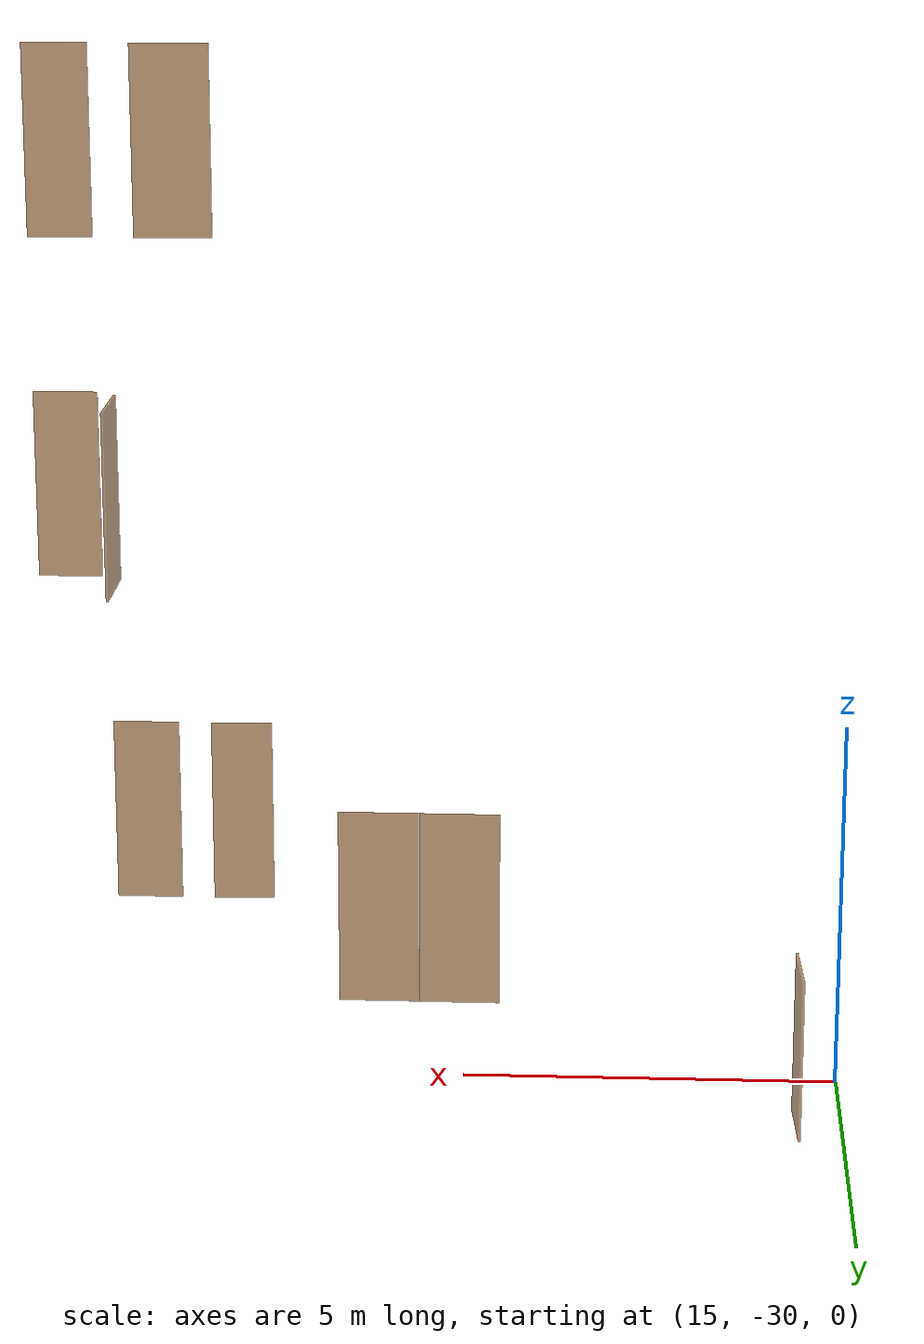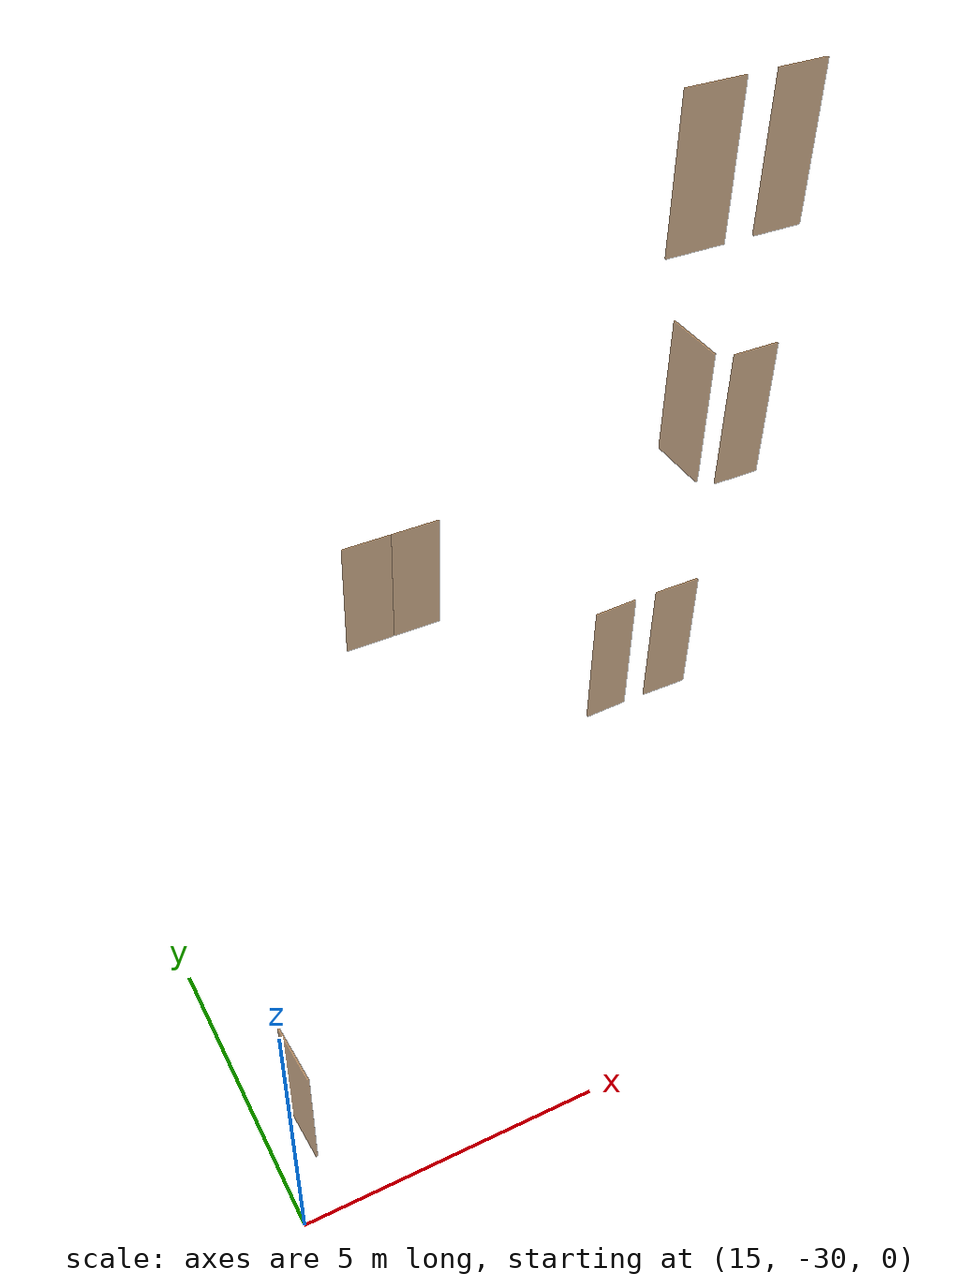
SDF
<sdf version="1.7">
 <world name="sim_world">
  <model name="Snull14">
   <pose>15.587816898779066 -28.54413247209049 0.0 0 0 1.6166443585963561</pose>
   <link name="right">
    <pose>0 0 1.11 0 0 0</pose>
    <visual name="right_visual">
     <geometry><box><size>1.023793662885057 0.03 2.2</size></box></geometry>
     <material>
      <ambient>0.5 0.25 0 0.6</ambient>
      <diffuse>0.5 0.25 0 0.6</diffuse>
      <pbr><metal><metalness>0.0</metalness></metal></pbr>
     </material>
    </visual>
    <collision name="right_collision">
     <geometry><box><size>1.023793662885057 0.03 2.2</size></box></geometry>
     <surface><contact><collide_bitmask>0x02</collide_bitmask></contact></surface>
    </collision>
    <inertial>
     <mass>50.0</mass>
     <inertia><ixx>20.17041666666667</ixx><iyy>24.533972767348345</iyy><izz>4.371056100681675</izz></inertia>
    </inertial>
   </link>
   <joint name="right_joint" type="revolute">
    <parent>world</parent>
    <child>right</child>
    <axis><xyz>0 0 1</xyz><limit><lower>0</lower><upper>1.57</upper></limit></axis>
    <pose>0.5168968314425285 0 0 0 0 0</pose>
   </joint>
   <plugin name="register_component" filename="libregister_component.so">
    <component name="Door">
     <v_max_door>0.5</v_max_door>
     <a_max_door>0.3</a_max_door>
     <a_nom_door>0.15</a_nom_door>
     <dx_min_door>0.01</dx_min_door>
     <f_max_door>500.0</f_max_door>
     <ros_interface>true</ros_interface>
     <door name="Snull14" type="SwingDoor" left_joint_name="empty_joint" right_joint_name="right_joint"/>
    </component>
   </plugin>
  </model>
  <model name="0null24">
   <pose>20.099279393645208 -22.700836351416932 4.0 0 0 -0.00411082363645534</pose>
   <link name="right">
    <pose>0.44732110776143874 0 1.11 0 0 0</pose>
    <visual name="right_visual">
     <geometry><box><size>0.8846422155228775 0.03 2.2</size></box></geometry>
     <material>
      <ambient>0.5 0.25 0 0.6</ambient>
      <diffuse>0.5 0.25 0 0.6</diffuse>
      <pbr><metal><metalness>0.0</metalness></metal></pbr>
     </material>
    </visual>
    <collision name="right_collision">
     <geometry><box><size>0.8846422155228775 0.03 2.2</size></box></geometry>
     <surface><contact><collide_bitmask>0x02</collide_bitmask></contact></surface>
    </collision>
    <inertial>
     <mass>50.0</mass>
     <inertia><ixx>20.17041666666667</ixx><iyy>23.42746603952178</iyy><izz>3.264549372855105</izz></inertia>
    </inertial>
   </link>
   <joint name="right_joint" type="revolute">
    <parent>world</parent>
    <child>right</child>
    <axis><xyz>0 0 -1</xyz><limit><lower>0</lower><upper>1.57</upper></limit></axis>
    <pose>0.44732110776143874 0 0 0 0 0</pose>
   </joint>
   <link name="left">
    <pose>-0.44732110776143874 0 1.11 0 0 0</pose>
    <visual name="left_visual">
     <geometry><box><size>0.8846422155228775 0.03 2.2</size></box></geometry>
     <material>
      <ambient>0.5 0.25 0 0.6</ambient>
      <diffuse>0.5 0.25 0 0.6</diffuse>
      <pbr><metal><metalness>0.0</metalness></metal></pbr>
     </material>
    </visual>
    <collision name="left_collision">
     <geometry><box><size>0.8846422155228775 0.03 2.2</size></box></geometry>
     <surface><contact><collide_bitmask>0x02</collide_bitmask></contact></surface>
    </collision>
    <inertial>
     <mass>50.0</mass>
     <inertia><ixx>20.17041666666667</ixx><iyy>23.42746603952178</iyy><izz>3.264549372855105</izz></inertia>
    </inertial>
   </link>
   <joint name="left_joint" type="revolute">
    <parent>world</parent>
    <child>left</child>
    <axis><xyz>0 0 -1</xyz><limit><lower>-1.57</lower><upper>0</upper></limit></axis>
    <pose>-0.44732110776143874 0 0 0 0 0</pose>
   </joint>
   <plugin name="register_component" filename="libregister_component.so">
    <component name="Door">
     <v_max_door>0.5</v_max_door>
     <a_max_door>0.3</a_max_door>
     <a_nom_door>0.15</a_nom_door>
     <dx_min_door>0.01</dx_min_door>
     <f_max_door>500.0</f_max_door>
     <ros_interface>true</ros_interface>
     <door name="0null24" type="DoubleSwingDoor" left_joint_name="left_joint" right_joint_name="right_joint"/>
    </component>
   </plugin>
  </model>
  <model name="nulln1">
   <pose>22.4242429899563 -25.92749131912032 4.0 0 0 0.040647577871593524</pose>
   <link name="right">
    <pose>0 0 1.11 0 0 0</pose>
    <visual name="right_visual">
     <geometry><box><size>0.7195351271562064 0.03 2.2</size></box></geometry>
     <material>
      <ambient>0.5 0.25 0 0.6</ambient>
      <diffuse>0.5 0.25 0 0.6</diffuse>
      <pbr><metal><metalness>0.0</metalness></metal></pbr>
     </material>
    </visual>
    <collision name="right_collision">
     <geometry><box><size>0.7195351271562064 0.03 2.2</size></box></geometry>
     <surface><contact><collide_bitmask>0x02</collide_bitmask></contact></surface>
    </collision>
    <inertial>
     <mass>50.0</mass>
     <inertia><ixx>20.17041666666667</ixx><iyy>22.323878330048746</iyy><izz>2.1609616633820754</izz></inertia>
    </inertial>
   </link>
   <joint name="right_joint" type="revolute">
    <parent>world</parent>
    <child>right</child>
    <axis><xyz>0 0 1</xyz><limit><lower>0</lower><upper>1.57</upper></limit></axis>
    <pose>0.3647675635781032 0 0 0 0 0</pose>
   </joint>
   <plugin name="register_component" filename="libregister_component.so">
    <component name="Door">
     <v_max_door>0.5</v_max_door>
     <a_max_door>0.3</a_max_door>
     <a_nom_door>0.15</a_nom_door>
     <dx_min_door>0.01</dx_min_door>
     <f_max_door>500.0</f_max_door>
     <ros_interface>true</ros_interface>
     <door name="nulln1" type="SwingDoor" left_joint_name="empty_joint" right_joint_name="right_joint"/>
    </component>
   </plugin>
  </model>
  <model name="nulln2">
   <pose>23.559907403950252 -25.91266848373967 4.0 0 0 0.0</pose>
   <link name="right">
    <pose>0 0 1.11 0 0 0</pose>
    <visual name="right_visual">
     <geometry><box><size>0.7772157711981487 0.03 2.2</size></box></geometry>
     <material>
      <ambient>0.5 0.25 0 0.6</ambient>
      <diffuse>0.5 0.25 0 0.6</diffuse>
      <pbr><metal><metalness>0.0</metalness></metal></pbr>
     </material>
    </visual>
    <collision name="right_collision">
     <geometry><box><size>0.7772157711981487 0.03 2.2</size></box></geometry>
     <surface><contact><collide_bitmask>0x02</collide_bitmask></contact></surface>
    </collision>
    <inertial>
     <mass>50.0</mass>
     <inertia><ixx>20.17041666666667</ixx><iyy>22.68360147916306</iyy><izz>2.5206848124963877</izz></inertia>
    </inertial>
   </link>
   <joint name="right_joint" type="revolute">
    <parent>world</parent>
    <child>right</child>
    <axis><xyz>0 0 1</xyz><limit><lower>0</lower><upper>1.57</upper></limit></axis>
    <pose>0.39360788559907434 0 0 0 0 0</pose>
   </joint>
   <plugin name="register_component" filename="libregister_component.so">
    <component name="Door">
     <v_max_door>0.5</v_max_door>
     <a_max_door>0.3</a_max_door>
     <a_nom_door>0.15</a_nom_door>
     <dx_min_door>0.01</dx_min_door>
     <f_max_door>500.0</f_max_door>
     <ros_interface>true</ros_interface>
     <door name="nulln2" type="SwingDoor" left_joint_name="empty_joint" right_joint_name="right_joint"/>
    </component>
   </plugin>
  </model>
  <model name="1null87">
   <pose>24.394130605234643 -25.87219504909829 8.0 0 0 0.0</pose>
   <link name="right">
    <pose>0 0 1.11 0 0 0</pose>
    <visual name="right_visual">
     <geometry><box><size>0.746449986932008 0.03 2.2</size></box></geometry>
     <material>
      <ambient>0.5 0.25 0 0.6</ambient>
      <diffuse>0.5 0.25 0 0.6</diffuse>
      <pbr><metal><metalness>0.0</metalness></metal></pbr>
     </material>
    </visual>
    <collision name="right_collision">
     <geometry><box><size>0.746449986932008 0.03 2.2</size></box></geometry>
     <surface><contact><collide_bitmask>0x02</collide_bitmask></contact></surface>
    </collision>
    <inertial>
     <mass>50.0</mass>
     <inertia><ixx>20.17041666666667</ixx><iyy>22.488281595794984</iyy><izz>2.3253649291283125</izz></inertia>
    </inertial>
   </link>
   <joint name="right_joint" type="revolute">
    <parent>world</parent>
    <child>right</child>
    <axis><xyz>0 0 1</xyz><limit><lower>0</lower><upper>1.57</upper></limit></axis>
    <pose>0.378224993466004 0 0 0 0 0</pose>
   </joint>
   <plugin name="register_component" filename="libregister_component.so">
    <component name="Door">
     <v_max_door>0.5</v_max_door>
     <a_max_door>0.3</a_max_door>
     <a_nom_door>0.15</a_nom_door>
     <dx_min_door>0.01</dx_min_door>
     <f_max_door>500.0</f_max_door>
     <ros_interface>true</ros_interface>
     <door name="1null87" type="SwingDoor" left_joint_name="empty_joint" right_joint_name="right_joint"/>
    </component>
   </plugin>
  </model>
  <model name="1null88">
   <pose>23.79315237277376 -25.21506179292833 8.0 0 0 1.5778899623800977</pose>
   <link name="right">
    <pose>0 0 1.11 0 0 0</pose>
    <visual name="right_visual">
     <geometry><box><size>1.0111211621378167 0.03 2.2</size></box></geometry>
     <material>
      <ambient>0.5 0.25 0 0.6</ambient>
      <diffuse>0.5 0.25 0 0.6</diffuse>
      <pbr><metal><metalness>0.0</metalness></metal></pbr>
     </material>
    </visual>
    <collision name="right_collision">
     <geometry><box><size>1.0111211621378167 0.03 2.2</size></box></geometry>
     <surface><contact><collide_bitmask>0x02</collide_bitmask></contact></surface>
    </collision>
    <inertial>
     <mass>50.0</mass>
     <inertia><ixx>20.17041666666667</ixx><iyy>24.426525018845542</iyy><izz>4.263608352178871</izz></inertia>
    </inertial>
   </link>
   <joint name="right_joint" type="revolute">
    <parent>world</parent>
    <child>right</child>
    <axis><xyz>0 0 -1</xyz><limit><lower>0</lower><upper>1.57</upper></limit></axis>
    <pose>0.5105605810689083 0 0 0 0 0</pose>
   </joint>
   <plugin name="register_component" filename="libregister_component.so">
    <component name="Door">
     <v_max_door>0.5</v_max_door>
     <a_max_door>0.3</a_max_door>
     <a_nom_door>0.15</a_nom_door>
     <dx_min_door>0.01</dx_min_door>
     <f_max_door>500.0</f_max_door>
     <ros_interface>true</ros_interface>
     <door name="1null88" type="SwingDoor" left_joint_name="empty_joint" right_joint_name="right_joint"/>
    </component>
   </plugin>
  </model>
  <model name="2null80">
   <pose>24.394130605234643 -25.87219504909829 12.0 0 0 0.0</pose>
   <link name="right">
    <pose>0 0 1.11 0 0 0</pose>
    <visual name="right_visual">
     <geometry><box><size>0.746449986932008 0.03 2.2</size></box></geometry>
     <material>
      <ambient>0.5 0.25 0 0.6</ambient>
      <diffuse>0.5 0.25 0 0.6</diffuse>
      <pbr><metal><metalness>0.0</metalness></metal></pbr>
     </material>
    </visual>
    <collision name="right_collision">
     <geometry><box><size>0.746449986932008 0.03 2.2</size></box></geometry>
     <surface><contact><collide_bitmask>0x02</collide_bitmask></contact></surface>
    </collision>
    <inertial>
     <mass>50.0</mass>
     <inertia><ixx>20.17041666666667</ixx><iyy>22.488281595794984</iyy><izz>2.3253649291283125</izz></inertia>
    </inertial>
   </link>
   <joint name="right_joint" type="revolute">
    <parent>world</parent>
    <child>right</child>
    <axis><xyz>0 0 1</xyz><limit><lower>0</lower><upper>1.57</upper></limit></axis>
    <pose>0.378224993466004 0 0 0 0 0</pose>
   </joint>
   <plugin name="register_component" filename="libregister_component.so">
    <component name="Door">
     <v_max_door>0.5</v_max_door>
     <a_max_door>0.3</a_max_door>
     <a_nom_door>0.15</a_nom_door>
     <dx_min_door>0.01</dx_min_door>
     <f_max_door>500.0</f_max_door>
     <ros_interface>true</ros_interface>
     <door name="2null80" type="SwingDoor" left_joint_name="empty_joint" right_joint_name="right_joint"/>
    </component>
   </plugin>
  </model>
  <model name="nullh2">
   <pose>23.09761789194637 -25.881267968487457 12.0 0 0 -0.0022126577289395</pose>
   <link name="right">
    <pose>0 0 1.11 0 0 0</pose>
    <visual name="right_visual">
     <geometry><box><size>0.90121456676933 0.03 2.2</size></box></geometry>
     <material>
      <ambient>0.5 0.25 0 0.6</ambient>
      <diffuse>0.5 0.25 0 0.6</diffuse>
      <pbr><metal><metalness>0.0</metalness></metal></pbr>
     </material>
    </visual>
    <collision name="right_collision">
     <geometry><box><size>0.90121456676933 0.03 2.2</size></box></geometry>
     <surface><contact><collide_bitmask>0x02</collide_bitmask></contact></surface>
    </collision>
    <inertial>
     <mass>50.0</mass>
     <inertia><ixx>20.17041666666667</ixx><iyy>23.550782063988468</iyy><izz>3.3878653973217965</izz></inertia>
    </inertial>
   </link>
   <joint name="right_joint" type="revolute">
    <parent>world</parent>
    <child>right</child>
    <axis><xyz>0 0 1</xyz><limit><lower>0</lower><upper>1.57</upper></limit></axis>
    <pose>0.455607283384665 0 0 0 0 0</pose>
   </joint>
   <plugin name="register_component" filename="libregister_component.so">
    <component name="Door">
     <v_max_door>0.5</v_max_door>
     <a_max_door>0.3</a_max_door>
     <a_nom_door>0.15</a_nom_door>
     <dx_min_door>0.01</dx_min_door>
     <f_max_door>500.0</f_max_door>
     <ros_interface>true</ros_interface>
     <door name="nullh2" type="SwingDoor" left_joint_name="empty_joint" right_joint_name="right_joint"/>
    </component>
   </plugin>
  </model>
 </world>
</sdf>
